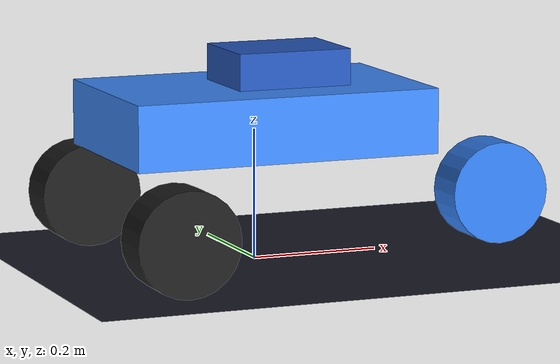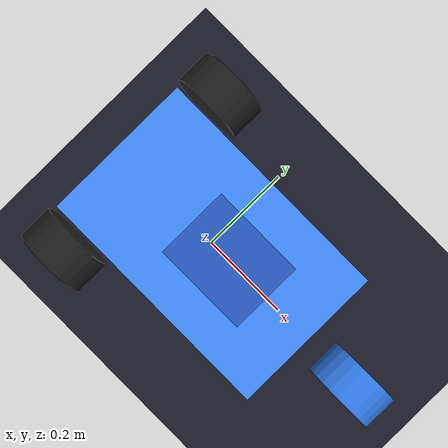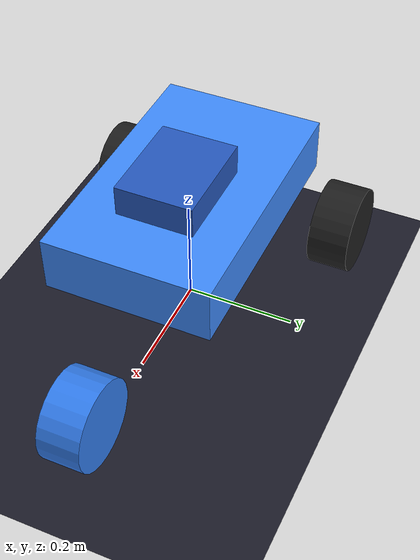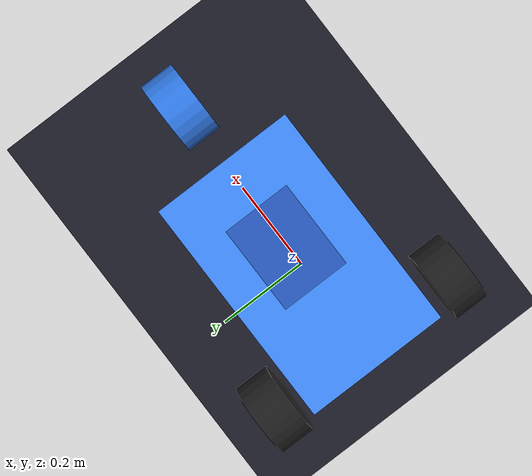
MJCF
<mujoco model="three_wheelr">
  <compiler angle="radian"/>

  <option timestep="0.002" gravity="0 0 -9.81"
          cone="elliptic" impratio="2" noslip_iterations="4"/>

  <!-- Medium-stiff contacts: snappy enough to hold weight, soft enough to absorb bumps -->
  <default>
    <geom solref="0.025 1" solimp="0.9 0.95 0.001"/>
  </default>

  <visual>
    <headlight ambient=".25 .25 .25" diffuse=".6 .6 .6" specular="0 0 0"/>
    <rgba haze="0.05 0.05 0.1 1"/>
    <global azimuth="130" elevation="-20"/>
  </visual>

  <asset>
    <texture name="grid" type="2d" builtin="checker"
             rgb1=".08 .08 .12" rgb2=".14 .14 .2"
             width="512" height="512"/>
    <material name="grid_floor"  texture="grid" texuniform="true" reflectance="0.06"/>
    <material name="chassis_mat" rgba=".25 .55 1 1"/>
    <material name="wheel_dark"  rgba=".12 .12 .12 1"/>
    <material name="wheel_blue"  rgba=".2  .5  .95 1"/>
    <material name="rim_mat"     rgba=".75 .75 .75 1"/>
  </asset>

  <worldbody>
    <light pos="0 0 4"   dir="0 0 -1"      diffuse=".8 .8 .9"  specular=".2 .2 .3"/>
    <light pos="3 2 4"   dir="-1 -0.5 -1"  diffuse=".5 .6 .9"  specular=".1 .1 .2"/>
    <light pos="-3 -2 3" dir="1 0.5 -1"    diffuse=".3 .4 .7"  specular=".1 .1 .2"/>

    <geom name="floor" type="plane" size="12 12 0.1"
          material="grid_floor" condim="3" friction="0.8 0.005 0.001"/>

    <body name="chassis" pos="0 0 0.22">
      <joint name="root" type="free"/>

      <!-- Main body — reduced mass 1.4 kg -->
      <geom name="body"
            type="box" size="0.24 0.15 0.05"
            mass="1.4"
            material="chassis_mat"
            condim="3" friction="0.3 0.005 0.001"/>

      <!-- Decorative cockpit ridge -->
      <geom name="cockpit"
            type="box" size="0.09 0.07 0.028"
            pos="0.04 0 0.078"
            mass="0.03"
            rgba=".15 .35 .75 1"/>

      <body name="front_pivot" pos="0.40 0 -0.08">
        <!-- ctrl[1]  steer -->
        <joint name="steer" type="hinge" axis="0 0 1"
               range="-0.6 0.6"
               damping="2.0" armature="0.01" stiffness="5"/>

        <!-- Steering strut / fork -->
        <geom name="front_knuckle" type="cylinder"
              size="0.013 0.035" pos="0 0 -0.035"
              mass="0.03" rgba=".55 .55 .55 1"/>

        <body name="wheel_front" pos="0.0 0.0 -0.06">
          <!-- ctrl[0]  front_drive — higher damping for smooth rolling -->
          <joint name="front_drive" type="hinge" axis="0 1 0"
                 damping="0.25" armature="0.05"/>
          <geom name="tyre_front" type="cylinder"
                size="0.08 0.038" euler="1.5707963 0 0"
                mass="0.20"
                material="wheel_blue"
                friction="2.5 0.01 0.001" condim="3"/>
          <geom name="rim_front" type="cylinder"
                size="0.042 0.034" euler="1.5707963 0 0"
                mass="0.015" material="rim_mat"/>
        </body>
      </body>

      <body name="wheel_rl" pos="-0.20 0.22 -0.14">
        <!-- ctrl[2]  rear_left_drive -->
        <joint name="rear_left_drive" type="hinge" axis="0 1 0"
               damping="0.25" armature="0.05"/>
        <geom name="tyre_rl" type="cylinder"
              size="0.08 0.038" euler="1.5707963 0 0"
              mass="0.20"
              material="wheel_dark"
              friction="2.5 0.01 0.001" condim="3"/>
        <geom name="rim_rl" type="cylinder"
              size="0.042 0.034" euler="1.5707963 0 0"
              mass="0.015" material="rim_mat"/>
      </body>

      <body name="wheel_rr" pos="-0.20 -0.22 -0.14">
        <!-- ctrl[3]  rear_right_drive -->
        <joint name="rear_right_drive" type="hinge" axis="0 1 0"
               damping="0.25" armature="0.05"/>
        <geom name="tyre_rr" type="cylinder"
              size="0.08 0.038" euler="1.5707963 0 0"
              mass="0.20"
              material="wheel_dark"
              friction="2.5 0.01 0.001" condim="3"/>
        <geom name="rim_rr" type="cylinder"
              size="0.042 0.034" euler="1.5707963 0 0"
              mass="0.015" material="rim_mat"/>
      </body>

    </body><!-- /chassis -->
  </worldbody>

  <actuator>
    <velocity name="front_drive"      joint="front_drive"      kv="50"  ctrlrange="-10 10"/>
    <position name="steer"            joint="steer"            kp="100" ctrlrange="-0.6 0.6"/>
    <velocity name="rear_left_drive"  joint="rear_left_drive"  kv="50"  ctrlrange="-10 10"/>
    <velocity name="rear_right_drive" joint="rear_right_drive" kv="50"  ctrlrange="-10 10"/>
  </actuator>

</mujoco>
